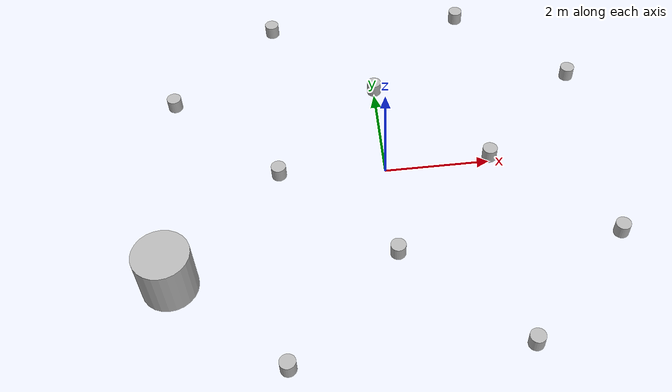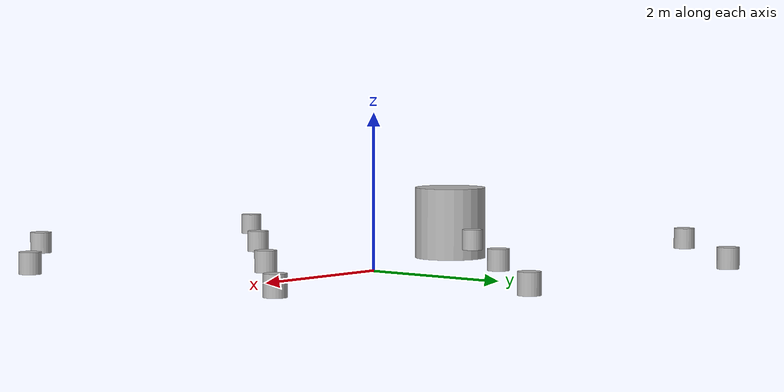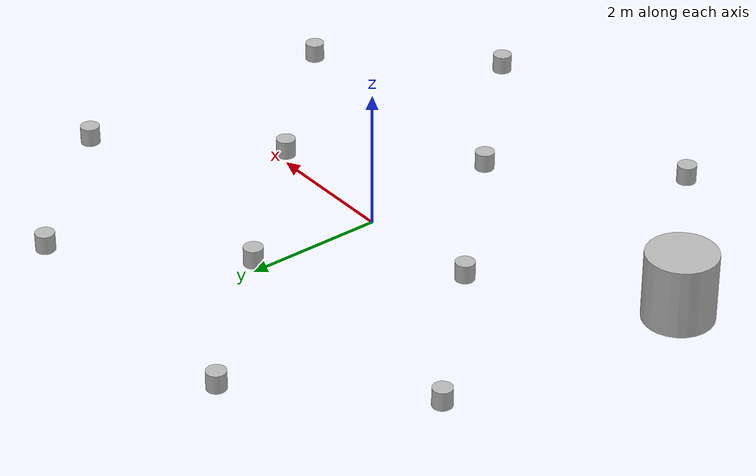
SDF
<?xml version="1.0"?>
<sdf version="1.6">
	<model name="unit_cylinder">
		<pose frame="">
			-2 -1 0.133723 -1e-06 1e-06 -1e-06
		</pose>
		<scale>
			0.276215 0.276215 0.267464
		</scale>
		<link name="link">
			<pose frame="">
				-2 -1 0.133723 -1e-06 1e-06 -1e-06
			</pose>
			<collision name="collision">
				<geometry>
					<cylinder>
						<radius>
							0.500003
						</radius>
						<length>
							1
						</length>
					</cylinder>
				</geometry>
			</collision>
			<visual name="visual">
				<geometry>
					<cylinder>
						<radius>
							0.500003
						</radius>
						<length>
							1
						</length>
					</cylinder>
				</geometry>
			</visual>
		</link>
	</model>
	<model name="unit_cylinder_clone">
		<pose frame="">
			-2 1 0.133723 -1e-06 1e-06 0
		</pose>
		<link name="link">
			<pose frame="">
				-2 1 0.133723 -1e-06 1e-06 0
			</pose>
			<collision name="collision">
				<geometry>
					<cylinder>
						<radius>
							0.138108
						</radius>
						<length>
							0.267465
						</length>
					</cylinder>
				</geometry>
			</collision>
			<visual name="visual">
				<geometry>
					<cylinder>
						<radius>
							0.138108
						</radius>
						<length>
							0.267465
						</length>
					</cylinder>
				</geometry>
			</visual>
		</link>
	</model>
	<model name="unit_cylinder_clone_0">
		<pose frame="">
			-1 2 0.133732 1e-06 -1e-06 0
		</pose>
		<link name="link">
			<pose frame="">
				-1 2 0.133732 1e-06 -1e-06 0
			</pose>
			<collision name="collision">
				<geometry>
					<cylinder>
						<radius>
							0.138108
						</radius>
						<length>
							0.267465
						</length>
					</cylinder>
				</geometry>
			</collision>
			<visual name="visual">
				<geometry>
					<cylinder>
						<radius>
							0.138108
						</radius>
						<length>
							0.267465
						</length>
					</cylinder>
				</geometry>
			</visual>
		</link>
	</model>
	<model name="unit_cylinder_clone_1">
		<pose frame="">
			-1 0 0.133723 -1e-06 1e-06 0
		</pose>
		<link name="link">
			<pose frame="">
				-1 0 0.133723 -1e-06 1e-06 0
			</pose>
			<collision name="collision">
				<geometry>
					<cylinder>
						<radius>
							0.138108
						</radius>
						<length>
							0.267465
						</length>
					</cylinder>
				</geometry>
			</collision>
			<visual name="visual">
				<geometry>
					<cylinder>
						<radius>
							0.138108
						</radius>
						<length>
							0.267465
						</length>
					</cylinder>
				</geometry>
			</visual>
		</link>
	</model>
	<model name="unit_cylinder_clone_2">
		<pose frame="">
			-1 -2 0.133723 -1e-06 1e-06 0
		</pose>
		<link name="link">
			<pose frame="">
				-1 -2 0.133723 -1e-06 1e-06 0
			</pose>
			<collision name="collision">
				<geometry>
					<cylinder>
						<radius>
							0.138108
						</radius>
						<length>
							0.267465
						</length>
					</cylinder>
				</geometry>
			</collision>
			<visual name="visual">
				<geometry>
					<cylinder>
						<radius>
							0.138108
						</radius>
						<length>
							0.267465
						</length>
					</cylinder>
				</geometry>
			</visual>
		</link>
	</model>
	<model name="unit_cylinder_clone_3">
		<pose frame="">
			0 -1 0.133732 1e-06 -1e-06 0
		</pose>
		<link name="link">
			<pose frame="">
				0 -1 0.133732 1e-06 -1e-06 0
			</pose>
			<collision name="collision">
				<geometry>
					<cylinder>
						<radius>
							0.138108
						</radius>
						<length>
							0.267465
						</length>
					</cylinder>
				</geometry>
			</collision>
			<visual name="visual">
				<geometry>
					<cylinder>
						<radius>
							0.138108
						</radius>
						<length>
							0.267465
						</length>
					</cylinder>
				</geometry>
			</visual>
		</link>
	</model>
	<model name="unit_cylinder_clone_4">
		<pose frame="">
			0 1 0.133723 -1e-06 1e-06 0
		</pose>
		<link name="link">
			<pose frame="">
				0 1 0.133723 -1e-06 1e-06 0
			</pose>
			<collision name="collision">
				<geometry>
					<cylinder>
						<radius>
							0.138108
						</radius>
						<length>
							0.267465
						</length>
					</cylinder>
				</geometry>
			</collision>
			<visual name="visual">
				<geometry>
					<cylinder>
						<radius>
							0.138108
						</radius>
						<length>
							0.267465
						</length>
					</cylinder>
				</geometry>
			</visual>
		</link>
	</model>
	<model name="unit_cylinder_clone_5">
		<pose frame="">
			1 2 0.133732 1e-06 -1e-06 0
		</pose>
		<link name="link">
			<pose frame="">
				1 2 0.133732 1e-06 -1e-06 0
			</pose>
			<collision name="collision">
				<geometry>
					<cylinder>
						<radius>
							0.138108
						</radius>
						<length>
							0.267465
						</length>
					</cylinder>
				</geometry>
			</collision>
			<visual name="visual">
				<geometry>
					<cylinder>
						<radius>
							0.138108
						</radius>
						<length>
							0.267465
						</length>
					</cylinder>
				</geometry>
			</visual>
		</link>
	</model>
	<model name="unit_cylinder_clone_6">
		<pose frame="">
			1 0 0.133723 -1e-06 1e-06 0
		</pose>
		<link name="link">
			<pose frame="">
				1 0 0.133723 -1e-06 1e-06 0
			</pose>
			<collision name="collision">
				<geometry>
					<cylinder>
						<radius>
							0.138108
						</radius>
						<length>
							0.267465
						</length>
					</cylinder>
				</geometry>
			</collision>
			<visual name="visual">
				<geometry>
					<cylinder>
						<radius>
							0.138108
						</radius>
						<length>
							0.267465
						</length>
					</cylinder>
				</geometry>
			</visual>
		</link>
	</model>
	<model name="unit_cylinder_clone_7">
		<pose frame="">
			1 -2 0.133723 -1e-06 1e-06 0
		</pose>
		<link name="link">
			<pose frame="">
				1 -2 0.133723 -1e-06 1e-06 0
			</pose>
			<collision name="collision">
				<geometry>
					<cylinder>
						<radius>
							0.138108
						</radius>
						<length>
							0.267465
						</length>
					</cylinder>
				</geometry>
			</collision>
			<visual name="visual">
				<geometry>
					<cylinder>
						<radius>
							0.138108
						</radius>
						<length>
							0.267465
						</length>
					</cylinder>
				</geometry>
			</visual>
		</link>
	</model>
	<model name="unit_cylinder_clone_8">
		<pose frame="">
			2 -1 0.133723 0 1e-06 0
		</pose>
		<link name="link">
			<pose frame="">
				2 -1 0.133723 0 1e-06 0
			</pose>
			<collision name="collision">
				<geometry>
					<cylinder>
						<radius>
							0.138108
						</radius>
						<length>
							0.267465
						</length>
					</cylinder>
				</geometry>
			</collision>
			<visual name="visual">
				<geometry>
					<cylinder>
						<radius>
							0.138108
						</radius>
						<length>
							0.267465
						</length>
					</cylinder>
				</geometry>
			</visual>
		</link>
	</model>
	<model name="unit_cylinder_clone_9">
		<pose frame="">
			2 1 0.133723 0 1e-06 0
		</pose>
		<link name="link">
			<pose frame="">
				2 1 0.133723 0 1e-06 0
			</pose>
			<collision name="collision">
				<geometry>
					<cylinder>
						<radius>
							0.138108
						</radius>
						<length>
							0.267465
						</length>
					</cylinder>
				</geometry>
			</collision>
			<visual name="visual">
				<geometry>
					<cylinder>
						<radius>
							0.138108
						</radius>
						<length>
							0.267465
						</length>
					</cylinder>
				</geometry>
			</visual>
		</link>
	</model>
</sdf>
